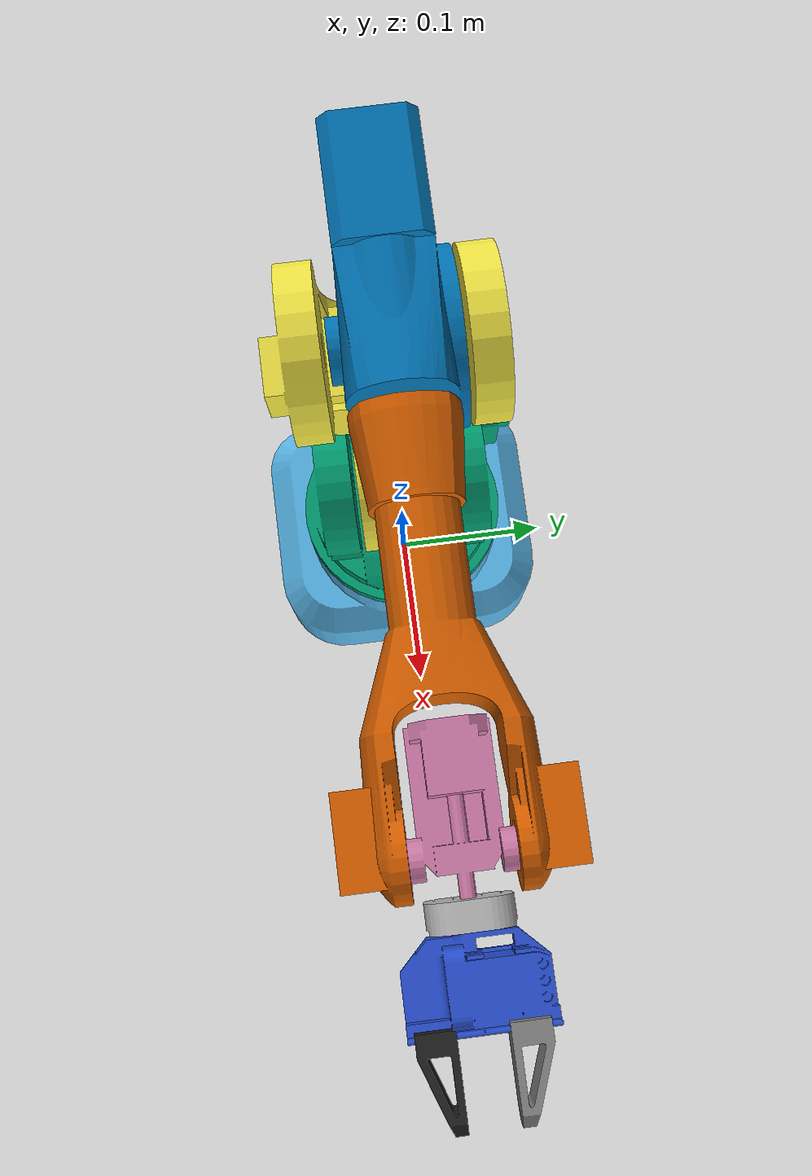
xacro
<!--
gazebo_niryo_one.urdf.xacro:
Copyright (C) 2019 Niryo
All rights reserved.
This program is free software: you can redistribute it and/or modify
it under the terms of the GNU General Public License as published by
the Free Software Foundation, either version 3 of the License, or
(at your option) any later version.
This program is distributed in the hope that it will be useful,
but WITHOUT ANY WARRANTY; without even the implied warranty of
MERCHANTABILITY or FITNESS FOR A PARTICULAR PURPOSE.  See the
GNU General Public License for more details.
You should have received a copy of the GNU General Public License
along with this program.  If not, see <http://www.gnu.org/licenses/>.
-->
<robot xmlns:xacro="http://ros.org/wiki/xacro" name="gripper">

    <xacro:include filename="$(find niryo_one_description)/urdf/v2/gazebo_niryo_one.urdf.xacro"/>

    <xacro:property name="PI" value="3.14159265359"/>

    <!-- Transmission macro -->
  <xacro:macro name="SimpleTransmissionEffort" params="joint n">
    <transmission name="transmission_${n}">
      <type>transmission_interface/SimpleTransmission</type>
      <joint name="${joint}">
        <hardwareInterface>hardware_interface/EffortJointInterface</hardwareInterface>
      </joint>
      <actuator name="motor_${n}">
        <mechanicalReduction>1</mechanicalReduction>
      </actuator>
    </transmission>
  </xacro:macro>

    <!-- gazebo joint state publisher for all joints. Necessary to control mors -->
    <gazebo>
        <plugin name="passive_joint_state_publisher" filename="libgazebo_ros_joint_state_publisher.so">

            <jointName>joint_1, joint_2, joint_3, joint_4, joint_5, joint_6,
                joint_base_to_mors_1, joint_base_to_mors_2
            </jointName>
            <updateRate>50.0</updateRate>
            <alwaysOn>true</alwaysOn>
        </plugin>
    </gazebo>

    <!-- Joint from tool_link to base_gripper -->
    <joint name="joint_to_gripper" type="fixed">
        <parent link="tool_link"/>
        <child link="base_gripper_1"/>
        <origin
                xyz="0 0 0"
                rpy="0 ${PI/2} ${PI/2}"/>
    </joint>

    <!-- Base Gripper -->
    <link name="base_gripper_1">
        <inertial>
            <origin xyz="0.0028582 0.0022204 0.023772"
                    rpy="0 0 0"/>
            <mass value="0.001"/>
            <inertia
                    ixx="1E-06"
                    ixy="0.0"
                    ixz="0.0"
                    iyy="1E-06"
                    iyz="0.0"
                    izz="1E-06"/>
        </inertial>
        <visual>
            <origin xyz="0 0 0"
                    rpy="0 0 0"/>
            <geometry>
                <mesh
                        filename="package://niryo_one_description/meshes/gripper_1/base_gripper_1.STL"/>
            </geometry>
        </visual>
        <collision>
            <origin xyz="0 0 0"
                    rpy="0 0 0"/>
            <geometry>
                <mesh
                        filename="package://niryo_one_description/meshes/gripper_1/base_gripper_1.STL"/>
            </geometry>
        </collision>
    </link>

    <!-- Mors 1 -->
    <link
            name="mors_1">
        <inertial>
            <origin xyz="-0.0049739 0.0067393 -0.023929"
                    rpy="0 0 0"/>
            <mass value="0.0067248"/>
            <inertia
                    ixx="1.1778E-06"
                    ixy="-2.1129E-08"
                    ixz="1.0185E-07"
                    iyy="1.3054E-06"
                    iyz="1.7669E-07"
                    izz="4.3534E-07"/>
        </inertial>
        <visual>
            <origin xyz="0 0 0"
                    rpy="0 0 0"/>
            <geometry>
                <mesh
                        filename="package://niryo_one_description/meshes/gripper_1/mors_1.STL"/>
            </geometry>
            <material name="">
                <color rgba="0.49804 0.49804 0.49804 1"/>
            </material>
        </visual>
        <collision>
            <origin xyz="0 0 0"
                    rpy="0 0 0"/>
            <geometry>
                <mesh
                        filename="package://niryo_one_description/meshes/gripper_1/mors_1.STL"/>
            </geometry>
        </collision>
    </link>
    <joint
            name="joint_base_to_mors_1"
            type="prismatic">
        <origin xyz="0.01455 -0.0796 0.0096137"
                rpy="1.5708 0 0"/>
        <parent link="base_gripper_1"/>
        <child link="mors_1"/>
        <axis xyz="0 1 0"/>
        <limit lower="-0.01"
               upper="0.01"
               effort="1"
               velocity="5"/>
    </joint>

    <!-- Mors 2 -->
    <link
            name="mors_2">
        <inertial>
            <origin xyz="-0.0049739 -0.0067393 -0.023929"
                    rpy="0 0 0"/>
            <mass value="0.0067248"/>
            <inertia
                    ixx="1.1778E-06"
                    ixy="2.1129E-08"
                    ixz="1.0185E-07"
                    iyy="1.3054E-06"
                    iyz="-1.7669E-07"
                    izz="4.3534E-07"/>
        </inertial>
        <visual>
            <origin xyz="0 0 0"
                    rpy="0 0 0"/>
            <geometry>
                <mesh
                        filename="package://niryo_one_description/meshes/gripper_1/mors_2.STL"/>
            </geometry>
        </visual>
        <collision>
            <origin xyz="0 0 0"
                    rpy="0 0 0"/>
            <geometry>
                <mesh
                        filename="package://niryo_one_description/meshes/gripper_1/mors_2.STL"/>
            </geometry>
        </collision>
    </link>

    <joint name="joint_base_to_mors_2"
           type="prismatic">
        <origin xyz="0.01455 -0.0796 -0.011066"
                rpy="1.5708 0 0"/>
        <parent link="base_gripper_1"/>
        <child link="mors_2"/>
        <axis xyz="0 -1 0"/>
        <limit lower="-0.01"
               upper="0.01"
               effort="1"
               velocity="5"/>
    </joint>

    <!-- Transmissions -->
    <xacro:SimpleTransmissionEffort n="7" joint="joint_base_to_mors_1"/>
    <xacro:SimpleTransmissionEffort n="8" joint="joint_base_to_mors_2"/>

    <!-- material -->
    <gazebo reference="base_gripper_1">
        <material>Gazebo/Blue</material>
    </gazebo>

    <gazebo reference="mors_1">
        <material>Gazebo/Black</material>
    </gazebo>

    <gazebo reference="mors_2">
        <material>Gazebo/Black</material>
    </gazebo>

</robot>

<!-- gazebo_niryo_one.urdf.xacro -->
<!-- |    This document was autogenerated by xacro from /home/wolf/ros_ws/src/test_niryo_moveit/n1_description/urdf/gazebo_niryo_one.urdf.xacro | -->
<!-- |    EDITING THIS FILE BY HAND IS NOT RECOMMENDED                                 | -->
<robot name="niryo_one">
    <!-- Properties -->
    <!-- Links -->
    <link name="world" />
    <link name="base_link">
        <visual>
            <origin rpy="0 0 0" xyz="0 0 0" />
            <geometry>
                <mesh filename="package://niryo_one_description/meshes/v2/collada/base_link.dae" />
            </geometry>
        </visual>
        <collision>
            <origin rpy="0 0 0" xyz="0 0 0" />
            <geometry>
                <mesh filename="package://niryo_one_description/meshes/v2/stl/base_link.stl" />
            </geometry>
        </collision>

<inertial>
            <origin rpy="0 0 0" xyz="0 0 0.0515" />
            <mass value="1.2" />
            <inertia ixx="0.0015" ixy="0.0" ixz="0.0" iyy="0.0015" iyz="0.0" izz="0.0015" />
        </inertial>

    </link>
    <link name="shoulder_link">
        <visual>
            <origin rpy="0 0 0" xyz="0 0 0" />
            <geometry>
                <mesh filename="package://niryo_one_description/meshes/v2/collada/shoulder_link.dae" />
            </geometry>
        </visual>
        <collision>
            <origin rpy="0 0 0" xyz="0 0 0" />
            <geometry>
                <mesh filename="package://niryo_one_description/meshes/v2/stl/shoulder_link.stl" />
            </geometry>
        </collision>

<inertial>
            <origin rpy="0 0 0" xyz="0 0 0.04" />
            <mass value="0.8" />
            <inertia ixx="0.0015" ixy="0.0" ixz="0.0" iyy="0.0015" iyz="0.0" izz="0.0015" />
        </inertial>

    </link>
    <link name="arm_link">
        <visual>
            <origin rpy="0 0 0" xyz="0 0 0" />
            <geometry>
                <mesh filename="package://niryo_one_description/meshes/v2/collada/arm_link.dae" />
            </geometry>
        </visual>
        <collision>
            <origin rpy="0 0 0" xyz="0 0 0" />
            <geometry>
                <mesh filename="package://niryo_one_description/meshes/v2/stl/arm_link.stl" />
            </geometry>
        </collision>

<inertial>
            <origin rpy="0 0 0" xyz="0.105 -0.1 0" />
            <mass value="0.4" />
            <inertia ixx="0.0015" ixy="0.0" ixz="0.0" iyy="0.0015" iyz="0.0" izz="0.0015" />
        </inertial>

    </link>
    <link name="elbow_link">
        <visual>
            <origin rpy="0 0 0" xyz="0 0 0" />
            <geometry>
                <mesh filename="package://niryo_one_description/meshes/v2/collada/elbow_link.dae" />
            </geometry>
        </visual>
        <collision>
            <origin rpy="0 0 0" xyz="0 0 0" />
            <geometry>
                <mesh filename="package://niryo_one_description/meshes/v2/stl/elbow_link.stl" />
            </geometry>
        </collision>

<inertial>
            <origin rpy="0 0 0" xyz="0.02075 0.015 0" />
            <mass value="0.3" />
            <inertia ixx="0.0015" ixy="0.0" ixz="0.0" iyy="0.0015" iyz="0.0" izz="0.0015" />
        </inertial>

    </link>
    <link name="forearm_link">
        <visual>
            <origin rpy="0 0 0" xyz="0 0 0" />
            <geometry>
                <mesh filename="package://niryo_one_description/meshes/v2/collada/forearm_link.dae" />
            </geometry>
        </visual>
        <collision>
            <origin rpy="0 0 0" xyz="0 0 0" />
            <geometry>
                <mesh filename="package://niryo_one_description/meshes/v2/stl/forearm_link.stl" />
            </geometry>
        </collision>

<inertial>
            <origin rpy="0 0 0" xyz="0 0 0.09" />
            <mass value="0.3" />
            <inertia ixx="0.0015" ixy="0.0" ixz="0.0" iyy="0.0015" iyz="0.0" izz="0.0015" />
        </inertial>

    </link>
    <link name="wrist_link">
        <visual>
            <origin rpy="0 0 0" xyz="0 0 0" />
            <geometry>
                <mesh filename="package://niryo_one_description/meshes/v2/collada/wrist_link.dae" />
            </geometry>
        </visual>
        <collision>
            <origin rpy="0 0 0" xyz="0 0 0" />
            <geometry>
                <mesh filename="package://niryo_one_description/meshes/v2/stl/wrist_link.stl" />
            </geometry>
        </collision>

<inertial>
            <origin rpy="0 0 0" xyz="0.0082 -0.00275 0" />
            <mass value="0.15" />
            <inertia ixx="0.001" ixy="0.0" ixz="0.0" iyy="0.001" iyz="0.0" izz="0.001" />
        </inertial>

    </link>
    <link name="hand_link">
        <visual>
            <origin rpy="0 0 0" xyz="0 0 0" />
            <geometry>
                <mesh filename="package://niryo_one_description/meshes/v2/collada/hand_link.dae" />
            </geometry>
        </visual>
        <collision>
            <origin rpy="0 0 0" xyz="0 0 0" />
            <geometry>
                <mesh filename="package://niryo_one_description/meshes/v2/stl/hand_link.stl" />
            </geometry>
        </collision>

<inertial>
            <origin rpy="0 0 0" xyz="0 0 0.00365" />
            <mass value="0.05" />
            <inertia ixx="0.001" ixy="0.0" ixz="0.0" iyy="0.001" iyz="0.0" izz="0.001" />
        </inertial>

    </link>
    <link name="tool_link" />
    <!--Joints -->
    <joint name="joint_world" type="fixed">
        <parent link="world" />
        <child link="base_link" />
        <origin rpy="0 0 0" xyz="0 0 0" />
    </joint>
    <joint name="joint_1" type="revolute">
        <parent link="base_link" />
        <child link="shoulder_link" />
        <origin rpy="0 0 0" xyz="0 0 0.103" />
        <axis xyz="0 0 1" />
        <limit effort="100.0" lower="-3.05433" upper="3.05433" velocity="3.0" />
        <dynamics damping="0.1" friction="0.0" />
    </joint>
    <joint name="joint_2" type="revolute">
        <parent link="shoulder_link" />
        <child link="arm_link" />
        <origin rpy="1.5707963268 -1.5707963268 0" xyz="0 0 0.08" />
        <limit effort="100.0" lower="-1.91986" upper="0.640187" velocity="3.0" />
        <axis xyz="0 0 1" />
        <dynamics damping="0.1" friction="0.0" />
    </joint>
    <joint name="joint_3" type="revolute">
        <parent link="arm_link" />
        <child link="elbow_link" />
        <origin rpy="0 0 -1.5707963268" xyz="0.21 0.0 0" />
        <limit effort="100.0" lower="-1.397485" upper="1.5707963268" velocity="3.0" />
        <axis xyz="0 0 1" />
        <dynamics damping="0.1" friction="0.0" />
    </joint>
    <joint name="joint_4" type="revolute">
        <parent link="elbow_link" />
        <child link="forearm_link" />
        <origin rpy="0 1.5707963268 0" xyz="0.0415 0.03 0" />
        <limit effort="100.0" lower="-3.05433" upper="3.05433" velocity="3.0" />
        <axis xyz="0 0 1" />
        <dynamics damping="0.1" friction="0.0" />
    </joint>
    <joint name="joint_5" type="revolute">
        <parent link="forearm_link" />
        <child link="wrist_link" />
        <origin rpy="0 -1.5707963268 0" xyz="0 0 0.18" />
        <limit effort="100.0" lower="-1.74533" upper="1.91986" velocity="3.0" />
        <axis xyz="0 0 1" />
        <dynamics damping="0.1" friction="0.0" />
    </joint>
    <joint name="joint_6" type="revolute">
        <parent link="wrist_link" />
        <child link="hand_link" />
        <origin rpy="0 1.5707963268 0" xyz="0.0164 -0.0055 0" />
        <limit effort="100.0" lower="-2.57436" upper="2.57436" velocity="3.0" />
        <axis xyz="0 0 1" />
        <dynamics damping="0.1" friction="0.0" />
    </joint>
    <joint name="hand_tool_joint" type="fixed">
        <parent link="hand_link" />
        <child link="tool_link" />
        <origin rpy="-1.5707963268 -1.5707963268 0" xyz="0 0 0.0073" />
    </joint>

    <gazebo>
        <plugin filename="libgazebo_ros_control.so" name="gazebo_ros_control">
            <robotSimType>gazebo_ros_control/DefaultRobotHWSim</robotSimType>
            <robotNamespace>/</robotNamespace>
        </plugin>
    </gazebo>
    <gazebo reference="base_link">
        <selfCollide>true</selfCollide>
    </gazebo>
    <gazebo reference="shoulder_link">
        <selfCollide>true</selfCollide>
    </gazebo>
    <gazebo reference="arm_link">
        <selfCollide>true</selfCollide>
    </gazebo>
    <gazebo reference="elbow_link">
        <selfCollide>true</selfCollide>
    </gazebo>
    <gazebo reference="forearm_link">
        <selfCollide>true</selfCollide>
    </gazebo>
    <gazebo reference="wrist_link">
        <selfCollide>true</selfCollide>
    </gazebo>
    <gazebo reference="hand_link">
        <selfCollide>true</selfCollide>
    </gazebo>
    <gazebo reference="tool_link" />
    <transmission name="trans_joint_1">
        <type>transmission_interface/SimpleTransmission</type>
        <joint name="joint_1">
            <hardwareInterface>hardware_interface/EffortJointInterface</hardwareInterface>
        </joint>
        <actuator name="joint_1_motor">
            <hardwareInterface>hardware_interface/EffortJointInterface</hardwareInterface>
            <mechanicalReduction>1</mechanicalReduction>
        </actuator>
    </transmission>
    <transmission name="trans_joint_2">
        <type>transmission_interface/SimpleTransmission</type>
        <joint name="joint_2">
            <hardwareInterface>hardware_interface/EffortJointInterface</hardwareInterface>
        </joint>
        <actuator name="joint_2_motor">
            <hardwareInterface>hardware_interface/EffortJointInterface</hardwareInterface>
            <mechanicalReduction>1</mechanicalReduction>
        </actuator>
    </transmission>
    <transmission name="trans_joint_3">
        <type>transmission_interface/SimpleTransmission</type>
        <joint name="joint_3">
            <hardwareInterface>hardware_interface/EffortJointInterface</hardwareInterface>
        </joint>
        <actuator name="joint_3_motor">
            <hardwareInterface>hardware_interface/EffortJointInterface</hardwareInterface>
            <mechanicalReduction>1</mechanicalReduction>
        </actuator>
    </transmission>
    <transmission name="trans_joint_4">
        <type>transmission_interface/SimpleTransmission</type>
        <joint name="joint_4">
            <hardwareInterface>hardware_interface/EffortJointInterface</hardwareInterface>
        </joint>
        <actuator name="joint_4_motor">
            <hardwareInterface>hardware_interface/EffortJointInterface</hardwareInterface>
            <mechanicalReduction>1</mechanicalReduction>
        </actuator>
    </transmission>
    <transmission name="trans_joint_5">
        <type>transmission_interface/SimpleTransmission</type>
        <joint name="joint_5">
            <hardwareInterface>hardware_interface/EffortJointInterface</hardwareInterface>
        </joint>
        <actuator name="joint_5_motor">
            <hardwareInterface>hardware_interface/EffortJointInterface</hardwareInterface>
            <mechanicalReduction>1</mechanicalReduction>
        </actuator>
    </transmission>
    <transmission name="trans_joint_6">
        <type>transmission_interface/SimpleTransmission</type>
        <joint name="joint_6">
            <hardwareInterface>hardware_interface/EffortJointInterface</hardwareInterface>
        </joint>
        <actuator name="joint_6_motor">
            <hardwareInterface>hardware_interface/EffortJointInterface</hardwareInterface>
            <mechanicalReduction>1</mechanicalReduction>
        </actuator>
    </transmission>

    <transmission name="trans_joint_1">
        <type>transmission_interface/SimpleTransmission</type>
        <joint name="joint_1">
            <hardwareInterface>hardware_interface/PositionJointInterface</hardwareInterface>
        </joint>
        <actuator name="joint_1_motor">
            <hardwareInterface>hardware_interface/PositionJointInterface</hardwareInterface>
            <mechanicalReduction>1</mechanicalReduction>
        </actuator>
    </transmission>
    <transmission name="trans_joint_2">
        <type>transmission_interface/SimpleTransmission</type>
        <joint name="joint_2">
            <hardwareInterface>hardware_interface/PositionJointInterface</hardwareInterface>
        </joint>
        <actuator name="joint_2_motor">
            <hardwareInterface>hardware_interface/PositionJointInterface</hardwareInterface>
            <mechanicalReduction>1</mechanicalReduction>
        </actuator>
    </transmission>
    <transmission name="trans_joint_3">
        <type>transmission_interface/SimpleTransmission</type>
        <joint name="joint_3">
            <hardwareInterface>hardware_interface/PositionJointInterface</hardwareInterface>
        </joint>
        <actuator name="joint_3_motor">
            <hardwareInterface>hardware_interface/PositionJointInterface</hardwareInterface>
            <mechanicalReduction>1</mechanicalReduction>
        </actuator>
    </transmission>
    <transmission name="trans_joint_4">
        <type>transmission_interface/SimpleTransmission</type>
        <joint name="joint_4">
            <hardwareInterface>hardware_interface/PositionJointInterface</hardwareInterface>
        </joint>
        <actuator name="joint_4_motor">
            <hardwareInterface>hardware_interface/PositionJointInterface</hardwareInterface>
            <mechanicalReduction>1</mechanicalReduction>
        </actuator>
    </transmission>
    <transmission name="trans_joint_5">
        <type>transmission_interface/SimpleTransmission</type>
        <joint name="joint_5">
            <hardwareInterface>hardware_interface/PositionJointInterface</hardwareInterface>
        </joint>
        <actuator name="joint_5_motor">
            <hardwareInterface>hardware_interface/PositionJointInterface</hardwareInterface>
            <mechanicalReduction>1</mechanicalReduction>
        </actuator>
    </transmission>
    <transmission name="trans_joint_6">
        <type>transmission_interface/SimpleTransmission</type>
        <joint name="joint_6">
            <hardwareInterface>hardware_interface/PositionJointInterface</hardwareInterface>
        </joint>
        <actuator name="joint_6_motor">
            <hardwareInterface>hardware_interface/PositionJointInterface</hardwareInterface>
            <mechanicalReduction>1</mechanicalReduction>
        </actuator>
    </transmission>
</robot>
